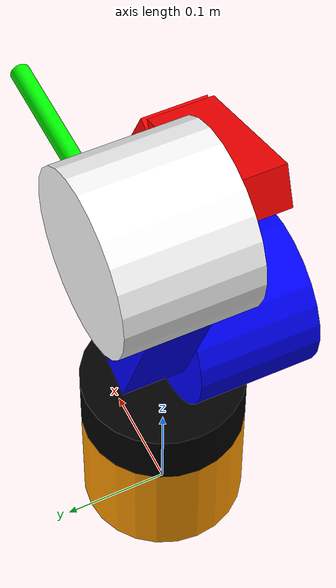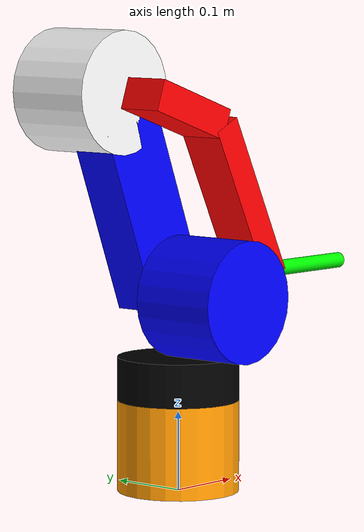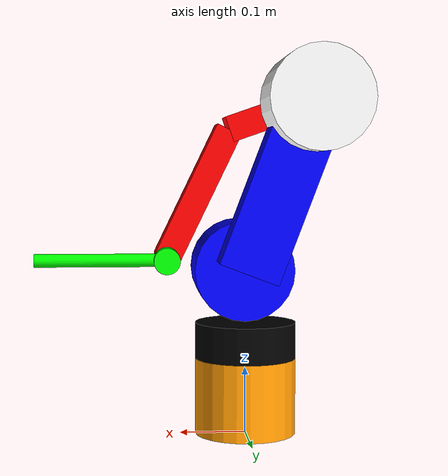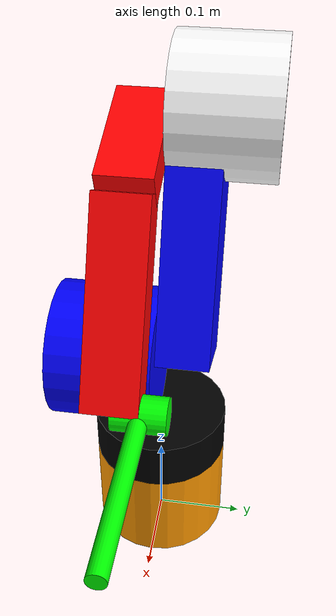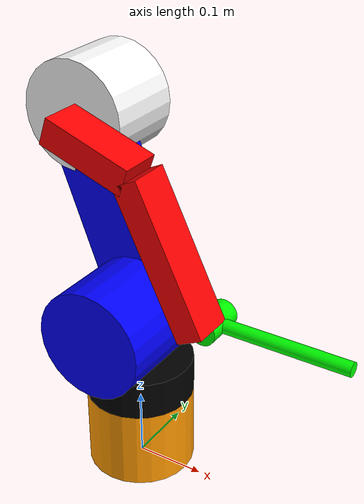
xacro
<?xml version="1.0"?>
<robot xmlns:xacro="http://wiki.ros.org/xacro" name="myrobot">

	<xacro:property name="multiplier" value="${2}"/>

	<xacro:property name="reduc_9_actuator_diameter" value="${0.077 * multiplier}"/>
	<xacro:property name="reduc_9_actuator_height" value="${0.058 * multiplier}"/>

	<xacro:property name="waist_reduction_ratio" value="9"/>
	<xacro:property name="waist_arm_height" value="${0.0275 * multiplier}"/>

	<xacro:property name="shoulder_reduction_ratio" value="9"/>
	<xacro:property name="shoulder_arm_angle_offset" value="${-0.5*pi - 0.52/4.5*pi}"/>
	<xacro:property name="shoulder_arm_length" value="${0.1385 * multiplier}"/>
	<xacro:property name="shoulder_arm_width" value="${0.047 * multiplier}"/>

	<xacro:property name="arm_height" value="${0.03 * multiplier}"/>

	<xacro:property name="elbow_reduction_ratio" value="5"/>
	<xacro:property name="elbow_arm1_angle_offset" value="${-pi/6 + 0.15/2.5*pi}"/>
	<xacro:property name="elbow_arm2_angle_offset" value="-${pi/4}"/>
	<xacro:property name="elbow_arm1_length" value="${0.065 * multiplier}"/>
	<xacro:property name="elbow_arm2_length" value="${0.110 * multiplier}"/>
	<xacro:property name="elbow_arm_width" value="${0.020 * multiplier}"/>

	<xacro:property name="wrist_reduction_ratio" value="6"/>
	<xacro:property name="wrist_angle_offset" value="${-pi/4 - elbow_arm1_angle_offset}"/>
	<xacro:property name="wrist_diameter" value="${0.04 * multiplier}"/>

	<xacro:property name="end_effector_rod_len" value="${0.100 * multiplier}"/>

	<material name="black">
		<color rgba="0 0 0 1"/>
	</material>
	<material name="white">
		<color rgba="1 1 1 1"/>
	</material>
	<material name="orange">
		<color rgba="1 0.6 0 1"/>
	</material>
	<material name="red">
		<color rgba="1 0 0 1"/>
	</material>
	<material name="green">
		<color rgba="0 1 0 1"/>
	</material>
	<material name="blue">
		<color rgba="0 0 1 1"/>
	</material>
	<material name="thing">
		<color rgba="0.2 0.7 0.4 1"/>
	</material>

	<link name="base_link" />

	<!-- LINKS -->

	<link name="waist">
		<visual>
			<geometry>
				<cylinder length="${reduc_9_actuator_height}" radius="${reduc_9_actuator_diameter/2}" />
			</geometry>
			<origin rpy="0 0 0" xyz="0 0 -${reduc_9_actuator_height/2}"/>
			<material name="orange"/>
		</visual>
		<collision>
			<geometry>
				<cylinder length="${reduc_9_actuator_height}" radius="${reduc_9_actuator_diameter/2}" />
			</geometry>
			<origin rpy="0 0 0" xyz="0 0 -${reduc_9_actuator_height/2}"/>
		</collision>
	</link>

	<link name="waist_arm">
		<visual>
			<geometry>
				<cylinder radius="${reduc_9_actuator_diameter/2}" length="${waist_arm_height}"/>
			</geometry>
			<origin rpy="0 0 0" xyz="0 0 ${waist_arm_height/2}"/>
			<material name="black"/>
		</visual>
		<collision>
			<geometry>
				<box size="${reduc_9_actuator_diameter} ${reduc_9_actuator_diameter} ${waist_arm_height}" />
			</geometry>
			<origin rpy="0 0 0" xyz="0 0 ${waist_arm_height/2}"/>
		</collision>
	</link>

	<link name="shoulder">
		<visual>
			<geometry>
				<cylinder length="${reduc_9_actuator_height}" radius="${reduc_9_actuator_diameter/2}" />
			</geometry>
			<origin rpy="0 0 0" xyz="0 0 -${reduc_9_actuator_height/2}"/>
			<material name="blue"/>
		</visual>
		<collision>
			<geometry>
				<cylinder length="${reduc_9_actuator_height}" radius="${reduc_9_actuator_diameter/2}" />
			</geometry>
			<origin rpy="0 0 0" xyz="0 0 -${reduc_9_actuator_height/2}"/>
		</collision>
	</link>

	<link name="shoulder_arm">
		<visual>
			<geometry>
				<box size="${shoulder_arm_length} ${shoulder_arm_width} ${arm_height}" />
			</geometry>
			<origin rpy="0 0 0" xyz="${shoulder_arm_length/2} 0 ${arm_height/2}"/>
			<material name="blue"/>
		</visual>
		<collision>
			<geometry>
				<box size="${shoulder_arm_length} ${reduc_9_actuator_diameter} 0.03" />
			</geometry>
			<origin rpy="0 0 0" xyz="${shoulder_arm_length/2} 0 ${arm_height/2}"/>
		</collision>
	</link>

	<link name="elbow">
		<visual>
			<geometry>
				<cylinder length="${reduc_9_actuator_height}" radius="${reduc_9_actuator_diameter/2}" />
			</geometry>
			<origin rpy="0 0 0" xyz="0 0 ${-reduc_9_actuator_height/2}"/>
			<material name="white"/>
		</visual>
		<collision>
			<geometry>
				<cylinder length="${reduc_9_actuator_height}" radius="${reduc_9_actuator_diameter/2}" />
			</geometry>
			<origin rpy="0 0 0" xyz="0 0 -${reduc_9_actuator_height/2}"/>
			<material name="white"/>
		</collision>
	</link>

	<link name="elbow_arm1">
		<visual>
			<geometry>
				<box size="${elbow_arm1_length} ${elbow_arm_width} ${arm_height}" />
			</geometry>
			<origin rpy="0 0 0" xyz="${elbow_arm1_length/2} 0 0"/>
			<material name="red"/>
		</visual>
		<collision>
			<geometry>
				<box size="${elbow_arm1_length} ${reduc_9_actuator_diameter} ${arm_height}" />
			</geometry>
			<origin rpy="0 0 0" xyz="${elbow_arm1_length/2} 0 ${arm_height/2}"/>
		</collision>
	</link>

	<link name="elbow_arm2">
		<visual>
			<geometry>
				<box size="${elbow_arm2_length} ${elbow_arm_width} ${arm_height}" />
			</geometry>
			<origin rpy="0 0 0" xyz="${elbow_arm2_length/2} 0 0"/>
			<material name="red"/>
		</visual>
		<collision>
			<geometry>
				<box size="${elbow_arm2_length} ${reduc_9_actuator_diameter} ${arm_height}" />
			</geometry>
			<origin rpy="0 0 0" xyz="${elbow_arm2_length/2} 0 ${arm_height/2}"/>
		</collision>
	</link>

	<link name="left_differential">
		<visual>
			<geometry>
				<cylinder length="${end_effector_rod_len}" radius="${wrist_diameter/8}" />
			</geometry>
			<origin rpy="0 0 0" xyz="0 0 -${end_effector_rod_len/2}"/>
			<material name="green"/>
		</visual>
		<collision>
			<geometry>
				<cylinder length="${reduc_9_actuator_height/8}" radius="${wrist_diameter/4}" />
			</geometry>
			<origin rpy="0 0 0" xyz="0 0 0"/>
		</collision>
	</link>

	<link name="right_differential">
		<visual>
			<geometry>
				<cylinder length="${reduc_9_actuator_height/2}" radius="${wrist_diameter/4}" />
			</geometry>
			<origin rpy="0 0 0" xyz="0 0 0"/>
			<material name="green"/>
		</visual>
		<collision>
			<geometry>
				<cylinder length="${reduc_9_actuator_height/8}" radius="${wrist_diameter/4}" />
			</geometry>
			<origin rpy="0 0 0" xyz="0 0 0"/>
		</collision>
	</link>

	<link name="end_effector" />

	<!-- MODELING JOINTS -->

	<joint name="waist_arm_join" type="fixed">
		<origin xyz="0 0 0"
				rpy="0 0 0"/>
		<parent link="waist"/>
		<child link="waist_arm"/>
	</joint>

	<joint name="shoulder_arm_join" type="fixed">
		<origin xyz="0 0 0"
				rpy="0 0 ${shoulder_arm_angle_offset}"/>
		<parent link="shoulder"/>
		<child link="shoulder_arm"/>
	</joint>

	<joint name="elbow_arm_join" type="fixed">
		<origin xyz="0 0 ${arm_height/2}"
				rpy="0 0 ${elbow_arm1_angle_offset}"/>
		<parent link="elbow"/>
		<child link="elbow_arm1"/>
	</joint>

	<joint name="elbow_arm2_join" type="fixed">
		<origin xyz="${elbow_arm1_length} 0 0"
				rpy="0 0 ${elbow_arm2_angle_offset}"/>
		<parent link="elbow_arm1"/>
		<child link="elbow_arm2"/>
	</joint>

	<joint name="end_effector_join" type="fixed">
		<origin xyz="0 0 ${end_effector_rod_len}"
				rpy="0 0 0"/>
		<parent link="left_differential"/>
		<child link="end_effector"/>
	</joint>

	<!-- MOVING JOINTS -->

	<joint name="waist_joint" type="revolute">
		<origin xyz="0 0 ${reduc_9_actuator_height}"/>
		<axis rpy="0 0 0" xyz="0 0 1"/>
		<parent link="base_link"/>
		<child link="waist"/>
        <limit effort="30" velocity="1.0" lower="-${pi}" upper="${pi}" />
	</joint>

	<joint name="shoulder_joint" type="revolute">
		<origin xyz="0 0 ${waist_arm_height + reduc_9_actuator_diameter/2}"
				rpy="-${pi/2} 0 0"/>
		<axis rpy="0 0 0" xyz="0 0 1"/>
		<parent link="waist"/>
		<child link="shoulder"/>
        <limit effort="30" velocity="1.0" lower="-${2.57}" upper="${3.71}" />
	</joint>

	<joint name="elbow_joint" type="revolute">
		<origin xyz="${cos(shoulder_arm_angle_offset) * shoulder_arm_length} ${sin(shoulder_arm_angle_offset) * shoulder_arm_length} 0"
				rpy="${pi} 0 0"/>
		<axis rpy="0 0 0" xyz="0 0 1"/>
		<parent link="shoulder"/>
		<child link="elbow"/>
        <limit effort="30" velocity="1.0" lower="0" upper="${2.28}" />
	</joint>

	<!-- Technically the PITCH of wrist -->
	<joint name="right_differential_joint" type="revolute">
		<origin xyz="${elbow_arm2_length} 0 -${reduc_9_actuator_height/4}"
				rpy="${-pi} 0 ${wrist_angle_offset}"/>
		<axis rpy="0 0 0" xyz="0 0 -1"/>
		<parent link="elbow_arm2"/>
		<child link="right_differential"/>
        <limit effort="30" velocity="1.0" lower="${-2*pi}" upper="${2*pi}"/>
	</joint>

	<!-- Technically the ROLL of wrist -->
	<joint name="left_differential_joint" type="revolute">
		<origin xyz="0 -${end_effector_rod_len} 0"
				rpy="${pi/2} 0 0"/>
		<axis rpy="0 0 0" xyz="0 0 1"/>
		<parent link="right_differential"/>
		<child link="left_differential"/>
        <limit effort="30" velocity="1.0" lower="${-2*pi}" upper="${2*pi}"/>
	</joint>

	<!-- ROS2 CONTROL -->
	<ros2_control name="pi3hat_hardware_interface" type="system">
		<hardware>
			<plugin>pi3hat_hardware_interface/Pi3HatHardwareInterface</plugin>
				<param name="imu_mounting_deg.yaw">0</param>
				<param name="imu_mounting_deg.pitch">0</param>
				<param name="imu_mounting_deg.roll">0</param>
				<param name="imu_sampling_rate">1000</param>

				<param name="can_1_fdcan_frame">true</param>
				<param name="can_1_automatic_retransmission">true</param>
				<param name="can_1_bitrate_switch">true</param>

				<param name="can_2_fdcan_frame">true</param>
				<param name="can_2_automatic_retransmission">true</param>
				<param name="can_2_bitrate_switch">true</param>

				<param name="can_3_fdcan_frame">true</param>
				<param name="can_3_automatic_retransmission">true</param>
				<param name="can_3_bitrate_switch">true</param>

				<param name="can_4_fdcan_frame">true</param>
				<param name="can_4_automatic_retransmission">true</param>
				<param name="can_4_bitrate_switch">true</param>

				<param name="can_5_fdcan_frame">true</param>
				<param name="can_5_automatic_retransmission">true</param>
				<param name="can_5_bitrate_switch">true</param>
		</hardware>

		<joint name="waist_joint">
			<param name="controller_type">moteus</param>
			<param name="controller_can_bus">1</param>
			<param name="controller_can_id">1</param>

			<param name="motor_direction">1</param>
			<param name="motor_position_offset">0.0</param>
			<param name="motor_position_max">${pi *  waist_reduction_ratio}</param>
			<param name="motor_position_min">${-pi * waist_reduction_ratio}</param>
			<param name="motor_velocity_max">5.0</param>
			<param name="motor_torque_max">1.0</param>

			<command_interface name="position"/>
			<command_interface name="velocity"/>
			<command_interface name="effort"/>

			<state_interface name = "position"/>
			<state_interface name = "velocity"/>
			<state_interface name = "effort"/>
			<state_interface name = "temperature"/>
		</joint>

		<transmission name="waist_joint_transmission">
            <plugin>transmission_interface/SimpleTransmission</plugin>
            <actuator name="waist_actuator" role="actuator1"/>
            <joint name="waist_joint" role="joint1">
                <mechanical_reduction>${waist_reduction_ratio}</mechanical_reduction>
                <offset>0</offset>
            </joint>
		</transmission>

		<joint name="shoulder_joint">
			<param name="controller_type">moteus</param>
			<param name="controller_can_bus">2</param>
			<param name="controller_can_id">2</param>

			<param name="motor_direction">1</param>
			<param name="motor_position_offset">0.0</param>
			<param name="motor_position_max">${2.42 * shoulder_reduction_ratio}</param>
			<param name="motor_position_min">${-1.7 * shoulder_reduction_ratio}</param>
			<param name="motor_velocity_max">5.0</param>
			<param name="motor_torque_max">1.0</param>

			<command_interface name="position"/>
			<command_interface name="velocity"/>
			<command_interface name="effort"/>

			<state_interface name = "position"/>
			<state_interface name = "velocity"/>
			<state_interface name = "effort"/>
			<state_interface name = "temperature"/>
		</joint>

		<transmission name="shoulder_joint_transmission">
            <plugin>transmission_interface/SimpleTransmission</plugin>
            <actuator name="shoulder_actuator" role="actuator1"/>
            <joint name="shoulder_joint" role="joint1">
                <mechanical_reduction>${shoulder_reduction_ratio}</mechanical_reduction>
                <offset>0</offset>
            </joint>
		</transmission>

		<joint name="elbow_joint">
			<param name="controller_type">moteus</param>
			<param name="controller_can_bus">3</param>
			<param name="controller_can_id">3</param>

			<param name="motor_direction">1</param>
			<param name="motor_position_offset">0.0</param>
			<param name="motor_position_max">${2.28 * elbow_reduction_ratio}</param>
			<param name="motor_position_min">${0.00 * elbow_reduction_ratio}</param>
			<param name="motor_velocity_max">5.0</param>
			<param name="motor_torque_max">1.0</param>

			<command_interface name="position"/>
			<command_interface name="velocity"/>
			<command_interface name="effort"/>

			<state_interface name = "position"/>
			<state_interface name = "velocity"/>
			<state_interface name = "effort"/>
			<state_interface name = "temperature"/>
		</joint>

		<transmission name="elbow_joint_transmission">
            <plugin>transmission_interface/SimpleTransmission</plugin>
            <actuator name="elbow_actuator" role="actuator1"/>
            <joint name="elbow_joint" role="joint1">
                <mechanical_reduction>${elbow_reduction_ratio}</mechanical_reduction>
                <offset>0</offset>
            </joint>
		</transmission>

		<!-- WRIST TRANSMISSION WHICH IS DIFFERENTIAL -->
		<joint name="left_differential_joint">
			<param name="controller_type">moteus</param>
			<param name="controller_can_bus">4</param>
			<param name="controller_can_id">4</param>

			<param name="motor_direction">1</param>
			<param name="motor_position_offset">0.0</param>
			<param name="motor_position_max">${2*pi * wrist_reduction_ratio}</param>
			<param name="motor_position_min">${-2*pi * wrist_reduction_ratio}</param>
			<param name="motor_velocity_max">10.0</param>
			<param name="motor_torque_max">5.0</param>

			<command_interface name="position"/>
			<command_interface name="velocity"/>
			<command_interface name="effort"/>

			<state_interface name="position"/>
			<state_interface name="velocity"/>
			<state_interface name="effort"/>
			<state_interface name="temperature"/>
		</joint>

		<joint name="right_differential_joint">
			<param name="controller_type">moteus</param>
			<param name="controller_can_bus">5</param>
			<param name="controller_can_id">5</param>

			<param name="motor_direction">-1</param>
			<param name="motor_position_offset">0.0</param>
			<param name="motor_position_max">${2*pi * wrist_reduction_ratio}</param>
			<param name="motor_position_min">${-2*pi * wrist_reduction_ratio}</param>
			<param name="motor_velocity_max">10.0</param>
			<param name="motor_torque_max">5.0</param>

			<command_interface name="position"/>
			<command_interface name="velocity"/>
			<command_interface name="effort"/>

			<state_interface name="position"/>
			<state_interface name="velocity"/>
			<state_interface name="effort"/>
			<state_interface name="temperature"/>
		</joint>

		<!-- Differential Transmission -->
		<transmission name="differential_drive_transmission">
			<plugin>transmission_interface/DifferentialTransmission</plugin>

			<actuator name="left_differential_actuator" role="actuator1"/>
			<actuator name="right_differential_actuator" role="actuator2"/>

			<joint name="left_differential_joint" role="joint1">
				<mechanical_reduction>${wrist_reduction_ratio / 2}</mechanical_reduction>
				<offset>0.0</offset>
			</joint>
			<joint name="right_differential_joint" role="joint2">
				<mechanical_reduction>${wrist_reduction_ratio / 2}</mechanical_reduction>
				<offset>0.0</offset>
			</joint>
		</transmission>
		<sensor name="imu_sensor">
			<state_interface name = "orientation.x"/>
			<state_interface name = "orientation.y"/>
			<state_interface name = "orientation.z"/>
			<state_interface name = "orientation.w"/>
			<state_interface name = "angular_velocity.x"/>
			<state_interface name = "angular_velocity.y"/>
			<state_interface name = "angular_velocity.z"/>
			<state_interface name = "linear_acceleration.x"/>
			<state_interface name = "linear_acceleration.y"/>
			<state_interface name = "linear_acceleration.z"/>
		</sensor>
	</ros2_control>

</robot>
